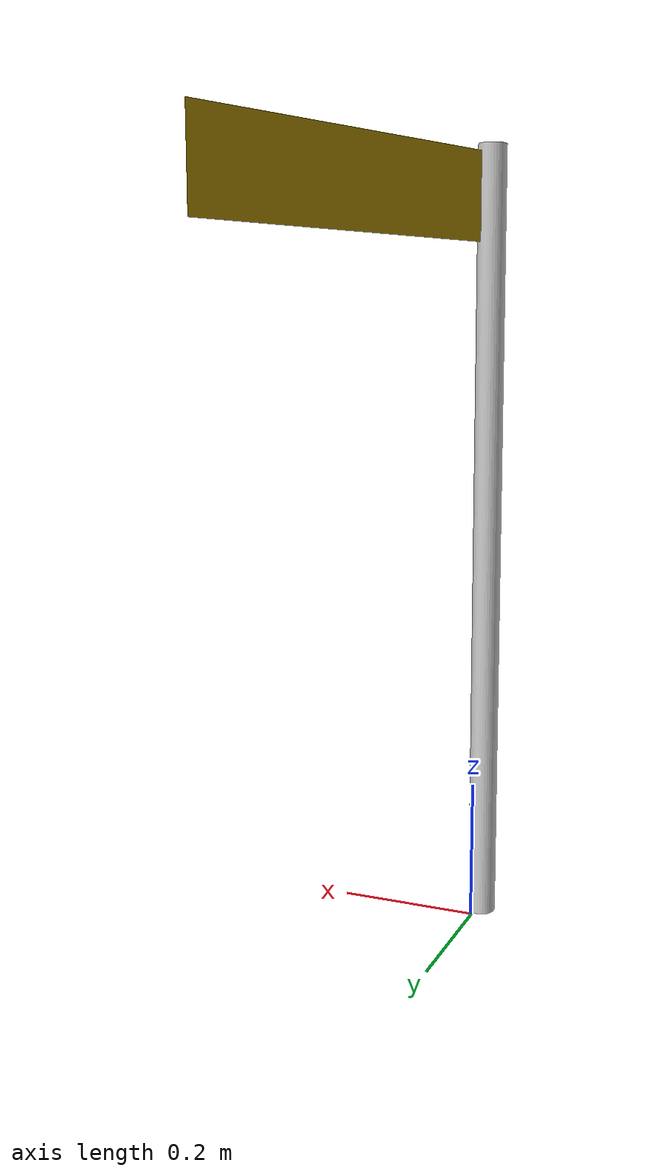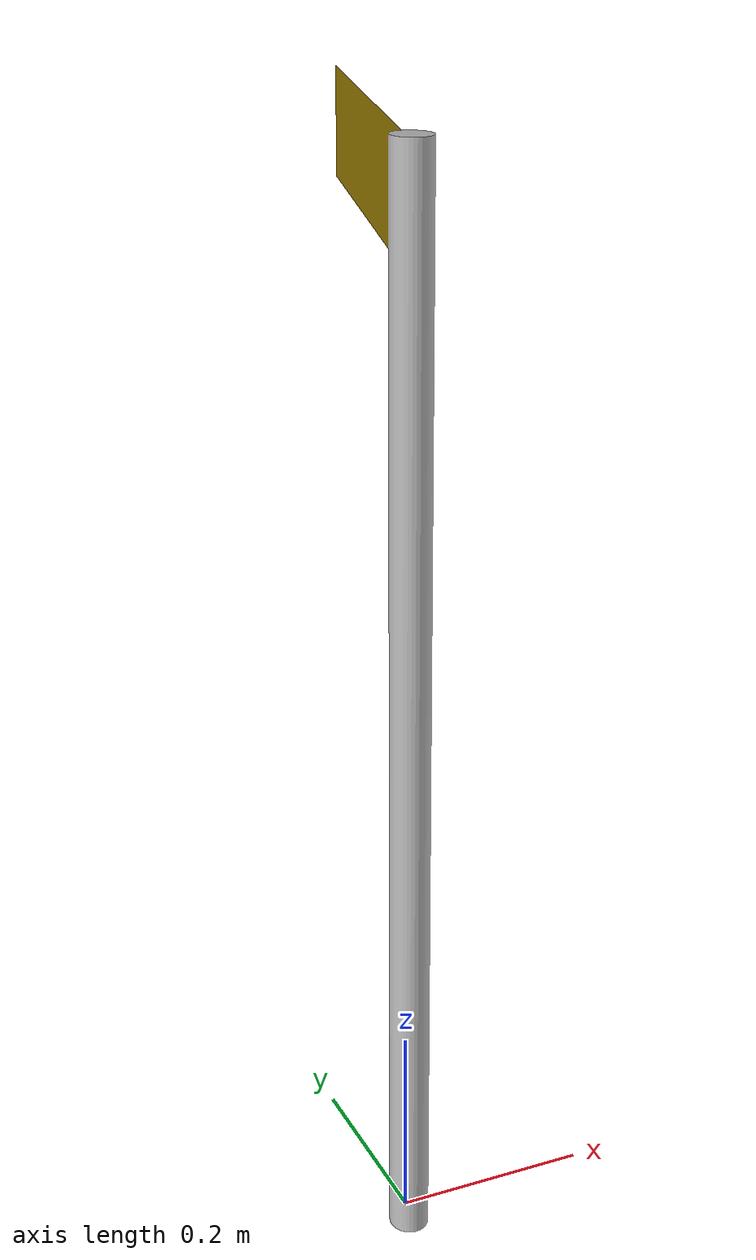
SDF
<?xml version="1.0"?>
<sdf version="1.8">
  <model name="pickup_zone_decal">
    <static>true</static>
    <link name="link">
      <visual name="visual">
        <geometry>
          <mesh>
            <uri>model://pickup_zone_decal/meshes/pickup_sign.dae</uri>
            <scale>1.3 1.3 1.3</scale>
          </mesh>
        </geometry>
      </visual>
      <collision name="collision">
        <geometry>
          <mesh>
            <uri>model://pickup_zone_decal/meshes/pickup_sign.dae</uri>
          </mesh>
        </geometry>
      </collision>
    </link>
  </model>
</sdf>
